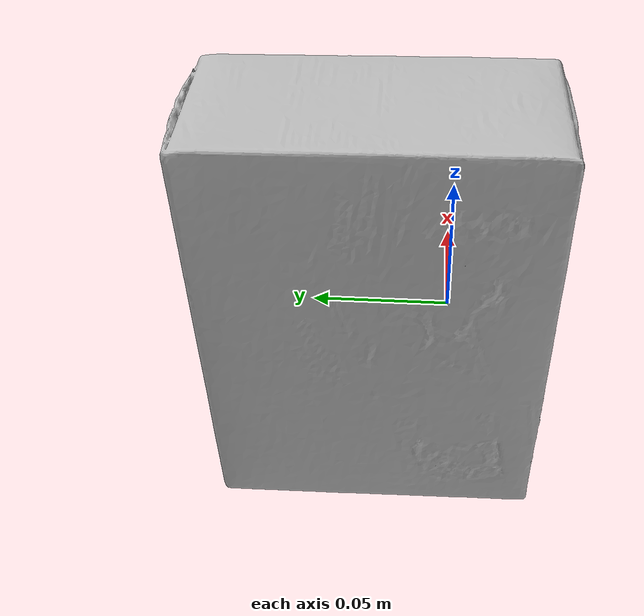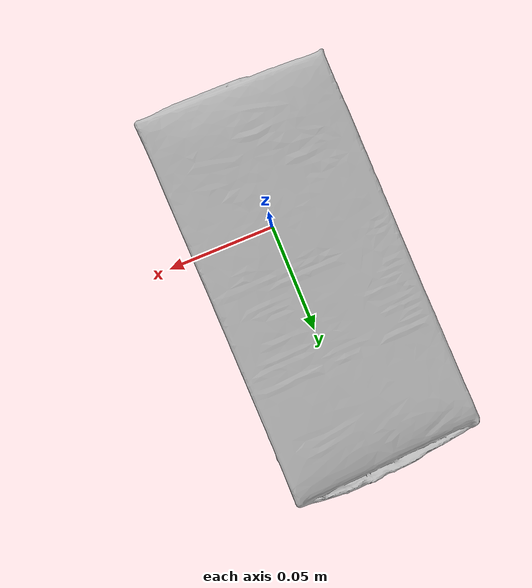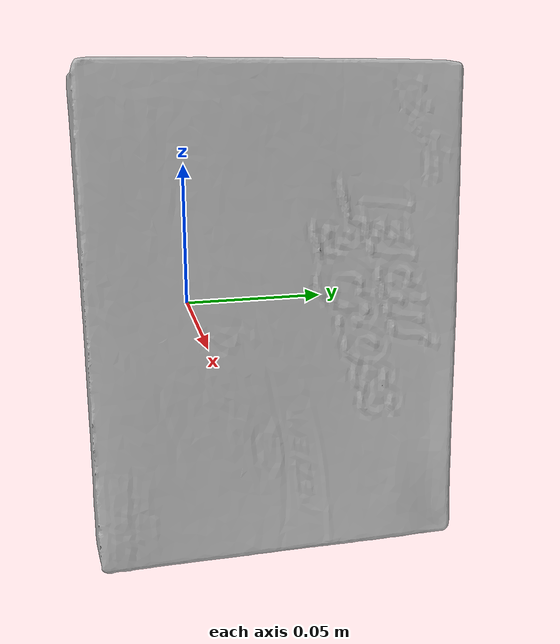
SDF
<?xml version='1.0'?>
<sdf version="1.4">
  <model name="Knaeckebrot">
    <static>false</static>
    <link name="link">
      <inertial>
        <pose>0.003990260966899845 0.027053439856659357 -0.0007364709707590593 0.0025819239210227276 0.09649095161247667 -3.132555358623325</pose>
        <mass>0.1363734289927447</mass>
        <inertia>
          <ixx>0.0004987200051999311</ixx>
          <ixy>-1.47038500570874e-22</ixy>
          <ixz>7.835992865368013e-21</ixz>
          <iyy>0.0003584313245909233</iyy>
          <iyz>1.5176792369536686e-19</iyz>
          <izz>0.00023162153785164015</izz>
        </inertia>
      </inertial>
      <collision name="collision">
        <geometry>
          <mesh>
            <!-- Use a downsampled mesh for collisions -->
            <uri>model:///Knaeckebrot/Knaeckebrot_250_collision.obj</uri>
	        </mesh>
        </geometry>
        <surface>
      </surface>
      </collision>
      <visual name="visual">
        <geometry>
          <mesh>
            <uri>model:///Knaeckebrot/Knaeckebrot_25k_tex.obj</uri>
	        </mesh>
        </geometry>
        <material>
          <script>
            <uri>model:///Knaeckebrot/Knaeckebrot.material</uri>
            <name>Knaeckebrot</name>
          </script>
        </material>
      </visual>
    </link>
  </model>
</sdf>
